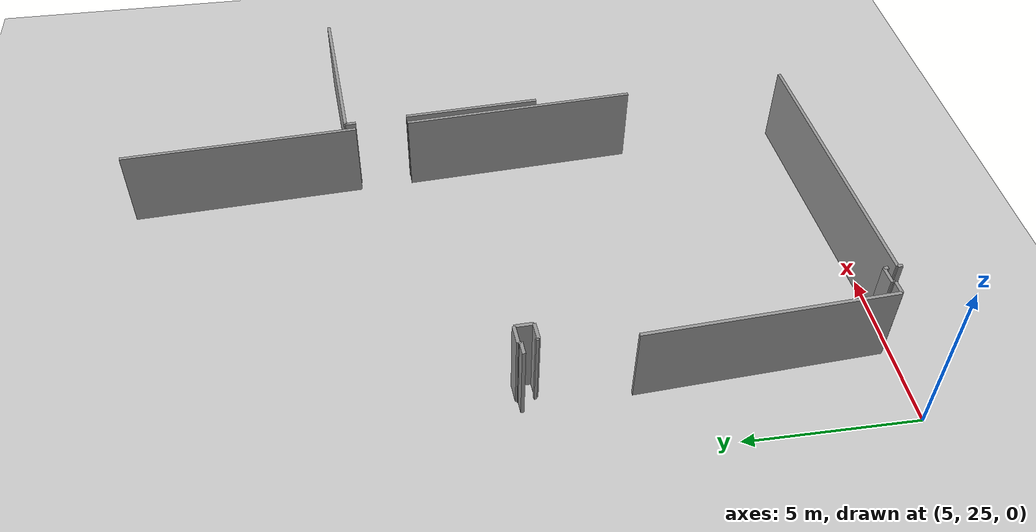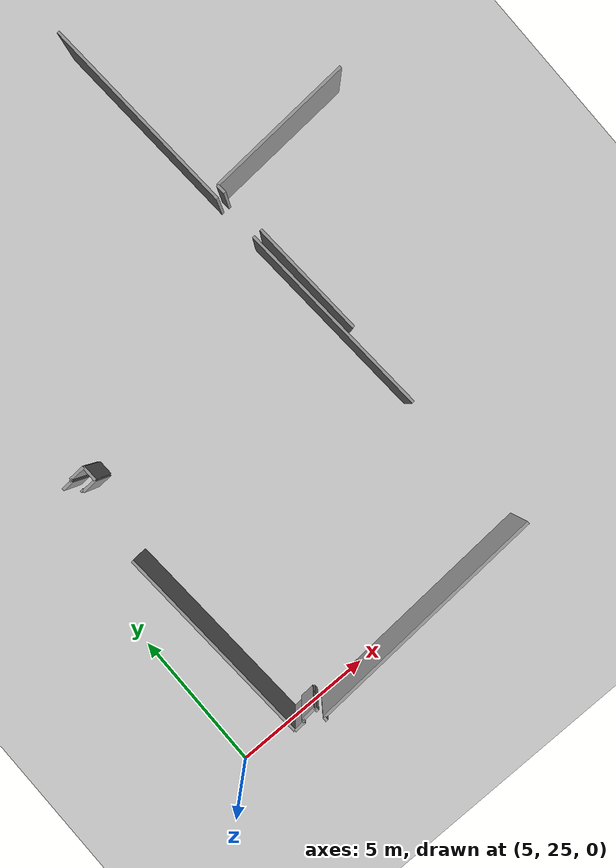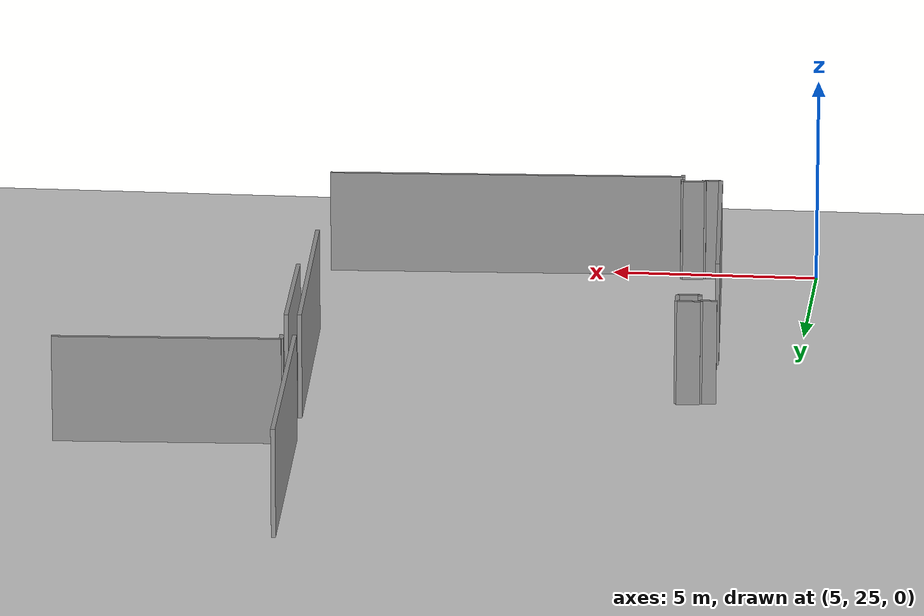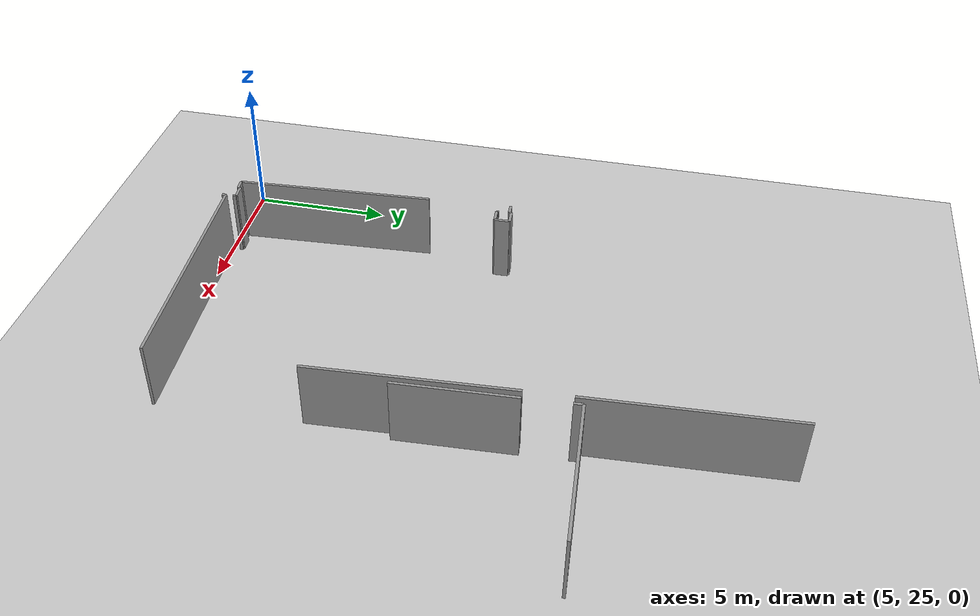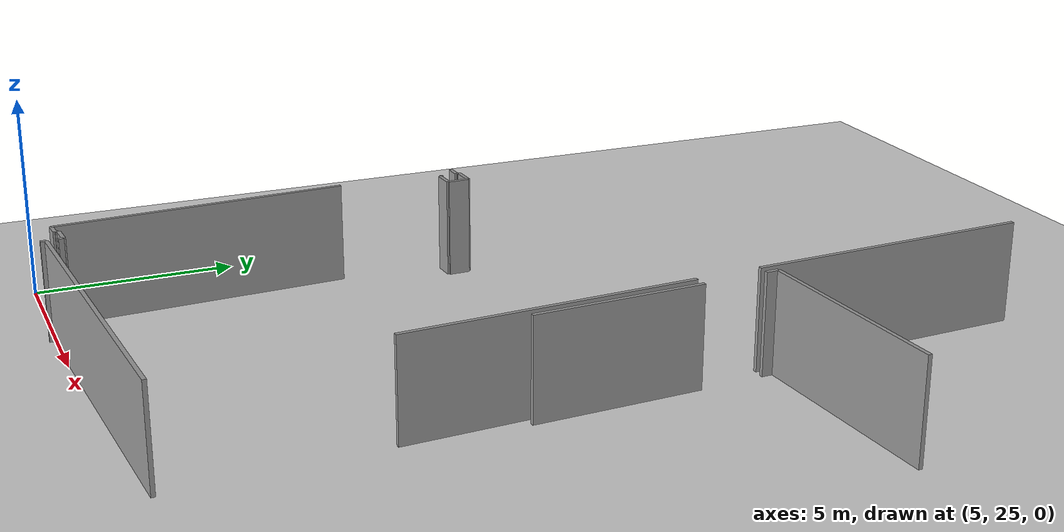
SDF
<sdf version="1.6">
 <world name="default">
  <model name="ground_plane">
   <static>1</static>
   <link name="link">
    <collision name="collision">
     <geometry><plane><normal>0 0 1</normal><size>100 100</size></plane></geometry>
     <surface><friction><ode><mu>100</mu><mu2>50</mu2></ode></friction></surface>
    </collision>
    <visual name="visual">
     <cast_shadows>0</cast_shadows>
     <geometry><plane><normal>0 0 1</normal><size>100 100</size></plane></geometry>
     <material>
      <script><uri>file://media/materials/scripts/gazebo.material</uri><name>Gazebo/Grey</name></script>
     </material>
    </visual>
   </link>
  </model>
  <model name="50025631">
   <static>1</static>
   <link name="Wall_1">
    <collision name="Wall_1_Collision">
     <geometry><box><size>0.127183202905 0.1 2.5</size></box></geometry>
     <pose>0.0635916014527 0 1.25 0 0 0</pose>
    </collision>
    <visual name="Wall_1_Visual">
     <pose>0.0635916014527 0 1.25 0 0 0</pose>
     <geometry><box><size>0.127183202905 0.1 2.5</size></box></geometry>
     <material>
      <script><uri>file://media/materials/scripts/gazebo.material</uri><name>Gazebo/Grey</name></script>
      <ambient>1 1 1 1</ambient>
     </material>
    </visual>
    <pose>64.1923377341 -23.3011754396 0 0 0 1.68387965702</pose>
   </link>
   <link name="Wall_2">
    <collision name="Wall_2_Collision">
     <geometry><box><size>0.516716505275 0.1 2.5</size></box></geometry>
     <pose>0.258358252637 0 1.25 0 0 0</pose>
    </collision>
    <visual name="Wall_2_Visual">
     <pose>0.258358252637 0 1.25 0 0 0</pose>
     <geometry><box><size>0.516716505275 0.1 2.5</size></box></geometry>
     <material>
      <script><uri>file://media/materials/scripts/gazebo.material</uri><name>Gazebo/Grey</name></script>
      <ambient>1 1 1 1</ambient>
     </material>
    </visual>
    <pose>64.1779860675 -23.1748045697 0 0 0 -3.07714998938</pose>
   </link>
   <link name="Wall_3">
    <collision name="Wall_3_Collision">
     <geometry><box><size>0.0820458110279 0.1 2.5</size></box></geometry>
     <pose>0.041022905514 0 1.25 0 0 0</pose>
    </collision>
    <visual name="Wall_3_Visual">
     <pose>0.041022905514 0 1.25 0 0 0</pose>
     <geometry><box><size>0.0820458110279 0.1 2.5</size></box></geometry>
     <material>
      <script><uri>file://media/materials/scripts/gazebo.material</uri><name>Gazebo/Grey</name></script>
      <ambient>1 1 1 1</ambient>
     </material>
    </visual>
    <pose>63.6623421158 -23.2080801153 0 0 0 -1.57079632679</pose>
   </link>
   <link name="Wall_4">
    <collision name="Wall_4_Collision">
     <geometry><box><size>0.398711349787 0.1 2.5</size></box></geometry>
     <pose>0.199355674893 0 1.25 0 0 0</pose>
    </collision>
    <visual name="Wall_4_Visual">
     <pose>0.199355674893 0 1.25 0 0 0</pose>
     <geometry><box><size>0.398711349787 0.1 2.5</size></box></geometry>
     <material>
      <script><uri>file://media/materials/scripts/gazebo.material</uri><name>Gazebo/Grey</name></script>
      <ambient>1 1 1 1</ambient>
     </material>
    </visual>
    <pose>63.6623421158 -23.2901259263 0 0 0 -3.0781604714</pose>
   </link>
   <link name="Wall_5">
    <collision name="Wall_5_Collision">
     <geometry><box><size>7.24460550657 0.1 2.5</size></box></geometry>
     <pose>3.62230275328 0 1.25 0 0 0</pose>
    </collision>
    <visual name="Wall_5_Visual">
     <pose>3.62230275328 0 1.25 0 0 0</pose>
     <geometry><box><size>7.24460550657 0.1 2.5</size></box></geometry>
     <material>
      <script><uri>file://media/materials/scripts/gazebo.material</uri><name>Gazebo/Grey</name></script>
      <ambient>1 1 1 1</ambient>
     </material>
    </visual>
    <pose>63.2644326329 -23.3154001003 0 0 0 1.63133311903</pose>
   </link>
   <link name="Wall_7">
    <collision name="Wall_7_Collision">
     <geometry><box><size>0.0769225990106 0.1 2.5</size></box></geometry>
     <pose>0.0384612995053 0 1.25 0 0 0</pose>
    </collision>
    <visual name="Wall_7_Visual">
     <pose>0.0384612995053 0 1.25 0 0 0</pose>
     <geometry><box><size>0.0769225990106 0.1 2.5</size></box></geometry>
     <material>
      <script><uri>file://media/materials/scripts/gazebo.material</uri><name>Gazebo/Grey</name></script>
      <ambient>1 1 1 1</ambient>
     </material>
    </visual>
    <pose>63.0505546983 -13.4150362284 0 0 0 -1.44664612438</pose>
   </link>
   <link name="Wall_8">
    <collision name="Wall_8_Collision">
     <geometry><box><size>0.512035400165 0.1 2.5</size></box></geometry>
     <pose>0.256017700082 0 1.25 0 0 0</pose>
    </collision>
    <visual name="Wall_8_Visual">
     <pose>0.256017700082 0 1.25 0 0 0</pose>
     <geometry><box><size>0.512035400165 0.1 2.5</size></box></geometry>
     <material>
      <script><uri>file://media/materials/scripts/gazebo.material</uri><name>Gazebo/Grey</name></script>
      <ambient>1 1 1 1</ambient>
     </material>
    </visual>
    <pose>63.0600801407 -13.491366774 0 0 0 0.065281205669</pose>
   </link>
   <link name="Wall_9">
    <collision name="Wall_9_Collision">
     <geometry><box><size>0.539861803143 0.1 2.5</size></box></geometry>
     <pose>0.269930901571 0 1.25 0 0 0</pose>
    </collision>
    <visual name="Wall_9_Visual">
     <pose>0.269930901571 0 1.25 0 0 0</pose>
     <geometry><box><size>0.539861803143 0.1 2.5</size></box></geometry>
     <material>
      <script><uri>file://media/materials/scripts/gazebo.material</uri><name>Gazebo/Grey</name></script>
      <ambient>1 1 1 1</ambient>
     </material>
    </visual>
    <pose>63.5710248741 -13.4579642224 0 0 0 1.60632750631</pose>
   </link>
   <link name="Wall_10">
    <collision name="Wall_10_Collision">
     <geometry><box><size>0.550061626672 0.1 2.5</size></box></geometry>
     <pose>0.275030813336 0 1.25 0 0 0</pose>
    </collision>
    <visual name="Wall_10_Visual">
     <pose>0.275030813336 0 1.25 0 0 0</pose>
     <geometry><box><size>0.550061626672 0.1 2.5</size></box></geometry>
     <material>
      <script><uri>file://media/materials/scripts/gazebo.material</uri><name>Gazebo/Grey</name></script>
      <ambient>1 1 1 1</ambient>
     </material>
    </visual>
    <pose>63.5518469833 -12.9184431617 0 0 0 -3.08083016274</pose>
   </link>
   <link name="Wall_11">
    <collision name="Wall_11_Collision">
     <geometry><box><size>0.0717937287443 0.1 2.5</size></box></geometry>
     <pose>0.0358968643722 0 1.25 0 0 0</pose>
    </collision>
    <visual name="Wall_11_Visual">
     <pose>0.0358968643722 0 1.25 0 0 0</pose>
     <geometry><box><size>0.0717937287443 0.1 2.5</size></box></geometry>
     <material>
      <script><uri>file://media/materials/scripts/gazebo.material</uri><name>Gazebo/Grey</name></script>
      <ambient>1 1 1 1</ambient>
     </material>
    </visual>
    <pose>63.0028004801 -12.9518457132 0 0 0 -1.50352211465</pose>
   </link>
   <link name="Wall_12">
    <collision name="Wall_12_Collision">
     <geometry><box><size>0.382514802553 0.1 2.5</size></box></geometry>
     <pose>0.191257401276 0 1.25 0 0 0</pose>
    </collision>
    <visual name="Wall_12_Visual">
     <pose>0.191257401276 0 1.25 0 0 0</pose>
     <geometry><box><size>0.382514802553 0.1 2.5</size></box></geometry>
     <material>
      <script><uri>file://media/materials/scripts/gazebo.material</uri><name>Gazebo/Grey</name></script>
      <ambient>1 1 1 1</ambient>
     </material>
    </visual>
    <pose>63.0076267043 -13.0234770405 0 0 0 -3.09143528919</pose>
   </link>
   <link name="Wall_19">
    <collision name="Wall_19_Collision">
     <geometry><box><size>7.09912275151 0.1 2.5</size></box></geometry>
     <pose>3.54956137576 0 1.25 0 0 0</pose>
    </collision>
    <visual name="Wall_19_Visual">
     <pose>3.54956137576 0 1.25 0 0 0</pose>
     <geometry><box><size>7.09912275151 0.1 2.5</size></box></geometry>
     <material>
      <script><uri>file://media/materials/scripts/gazebo.material</uri><name>Gazebo/Grey</name></script>
      <ambient>1 1 1 1</ambient>
     </material>
    </visual>
    <pose>71.6251039861 -2.19632571933 0 0 0 -1.51285279594</pose>
   </link>
   <link name="Wall_20">
    <collision name="Wall_20_Collision">
     <geometry><box><size>7.0879299601 0.1 2.5</size></box></geometry>
     <pose>3.54396498005 0 1.25 0 0 0</pose>
    </collision>
    <visual name="Wall_20_Visual">
     <pose>3.54396498005 0 1.25 0 0 0</pose>
     <geometry><box><size>7.0879299601 0.1 2.5</size></box></geometry>
     <material>
      <script><uri>file://media/materials/scripts/gazebo.material</uri><name>Gazebo/Grey</name></script>
      <ambient>1 1 1 1</ambient>
     </material>
    </visual>
    <pose>72.1271583065 -10.8939691249 0 0 0 -1.50746544688</pose>
   </link>
   <link name="Wall_23">
    <collision name="Wall_23_Collision">
     <geometry><box><size>4.14863764413 0.1 2.5</size></box></geometry>
     <pose>2.07431882206 0 1.25 0 0 0</pose>
    </collision>
    <visual name="Wall_23_Visual">
     <pose>2.07431882206 0 1.25 0 0 0</pose>
     <geometry><box><size>4.14863764413 0.1 2.5</size></box></geometry>
     <material>
      <script><uri>file://media/materials/scripts/gazebo.material</uri><name>Gazebo/Grey</name></script>
      <ambient>1 1 1 1</ambient>
     </material>
    </visual>
    <pose>72.6701085265 -15.0144215199 0 0 0 1.62718636227</pose>
   </link>
   <link name="Wall_24">
    <collision name="Wall_24_Collision">
     <geometry><box><size>0.319287703387 0.1 2.5</size></box></geometry>
     <pose>0.159643851693 0 1.25 0 0 0</pose>
    </collision>
    <visual name="Wall_24_Visual">
     <pose>0.159643851693 0 1.25 0 0 0</pose>
     <geometry><box><size>0.319287703387 0.1 2.5</size></box></geometry>
     <material>
      <script><uri>file://media/materials/scripts/gazebo.material</uri><name>Gazebo/Grey</name></script>
      <ambient>1 1 1 1</ambient>
     </material>
    </visual>
    <pose>72.3279546335 -9.29598089831 0 0 0 1.6396665001</pose>
   </link>
   <link name="Wall_25">
    <collision name="Wall_25_Collision">
     <geometry><box><size>5.26493296111 0.1 2.5</size></box></geometry>
     <pose>2.63246648056 0 1.25 0 0 0</pose>
    </collision>
    <visual name="Wall_25_Visual">
     <pose>2.63246648056 0 1.25 0 0 0</pose>
     <geometry><box><size>5.26493296111 0.1 2.5</size></box></geometry>
     <material>
      <script><uri>file://media/materials/scripts/gazebo.material</uri><name>Gazebo/Grey</name></script>
      <ambient>1 1 1 1</ambient>
     </material>
    </visual>
    <pose>72.3059826129 -8.97745010256 0 0 0 0.0626159323086</pose>
   </link>
   <link name="Wall_56">
    <collision name="Wall_56_Collision">
     <geometry><box><size>0.142754630953 0.1 2.5</size></box></geometry>
     <pose>0.0713773154763 0 1.25 0 0 0</pose>
    </collision>
    <visual name="Wall_56_Visual">
     <pose>0.0713773154763 0 1.25 0 0 0</pose>
     <geometry><box><size>0.142754630953 0.1 2.5</size></box></geometry>
     <material>
      <script><uri>file://media/materials/scripts/gazebo.material</uri><name>Gazebo/Grey</name></script>
      <ambient>1 1 1 1</ambient>
     </material>
    </visual>
    <pose>64.2125316721 -23.714833654 0 0 0 1.57079632679</pose>
   </link>
   <link name="Wall_57">
    <collision name="Wall_57_Collision">
     <geometry><box><size>8.68326241807 0.1 2.5</size></box></geometry>
     <pose>4.34163120904 0 1.25 0 0 0</pose>
    </collision>
    <visual name="Wall_57_Visual">
     <pose>4.34163120904 0 1.25 0 0 0</pose>
     <geometry><box><size>8.68326241807 0.1 2.5</size></box></geometry>
     <material>
      <script><uri>file://media/materials/scripts/gazebo.material</uri><name>Gazebo/Grey</name></script>
      <ambient>1 1 1 1</ambient>
     </material>
    </visual>
    <pose>64.2125316721 -23.5720790231 0 0 0 0.0577483343146</pose>
   </link>
   <pose>-55.9 48.5496043766 0 0 0 0</pose>
  </model>
 </world>
</sdf>
